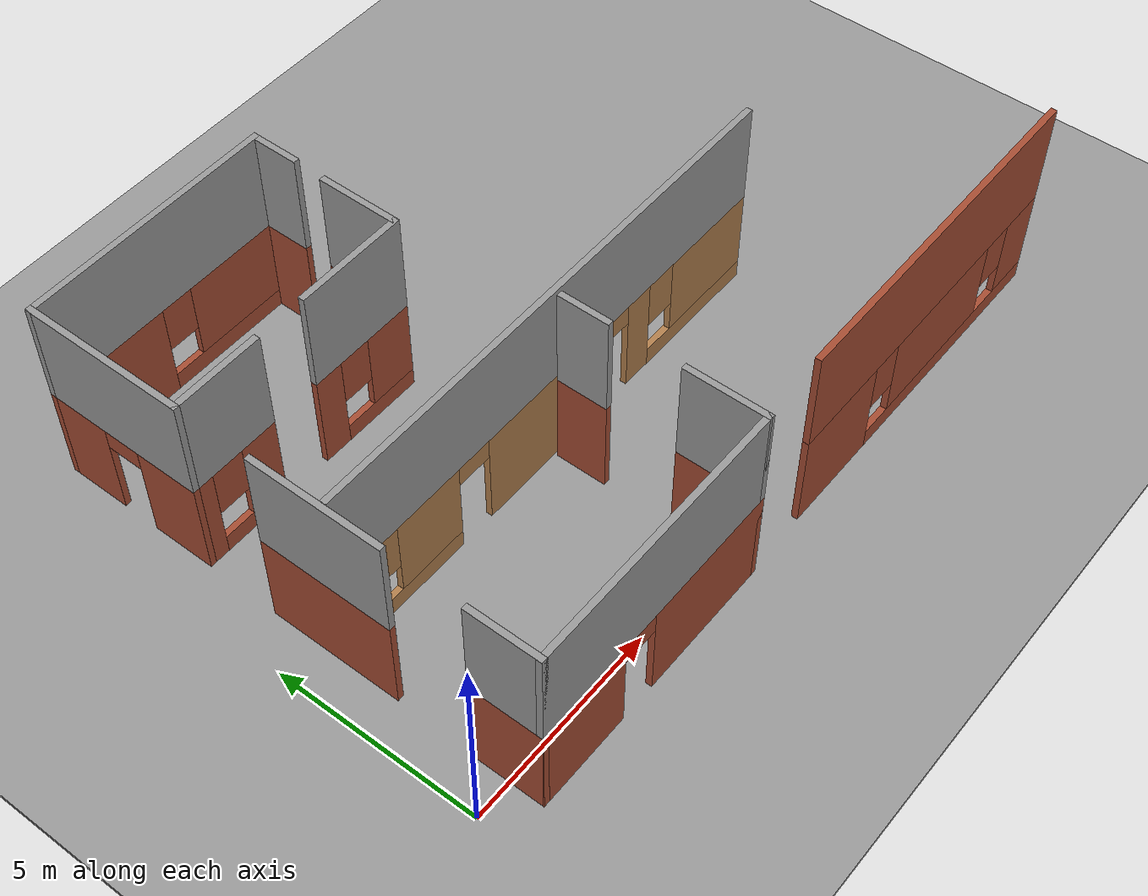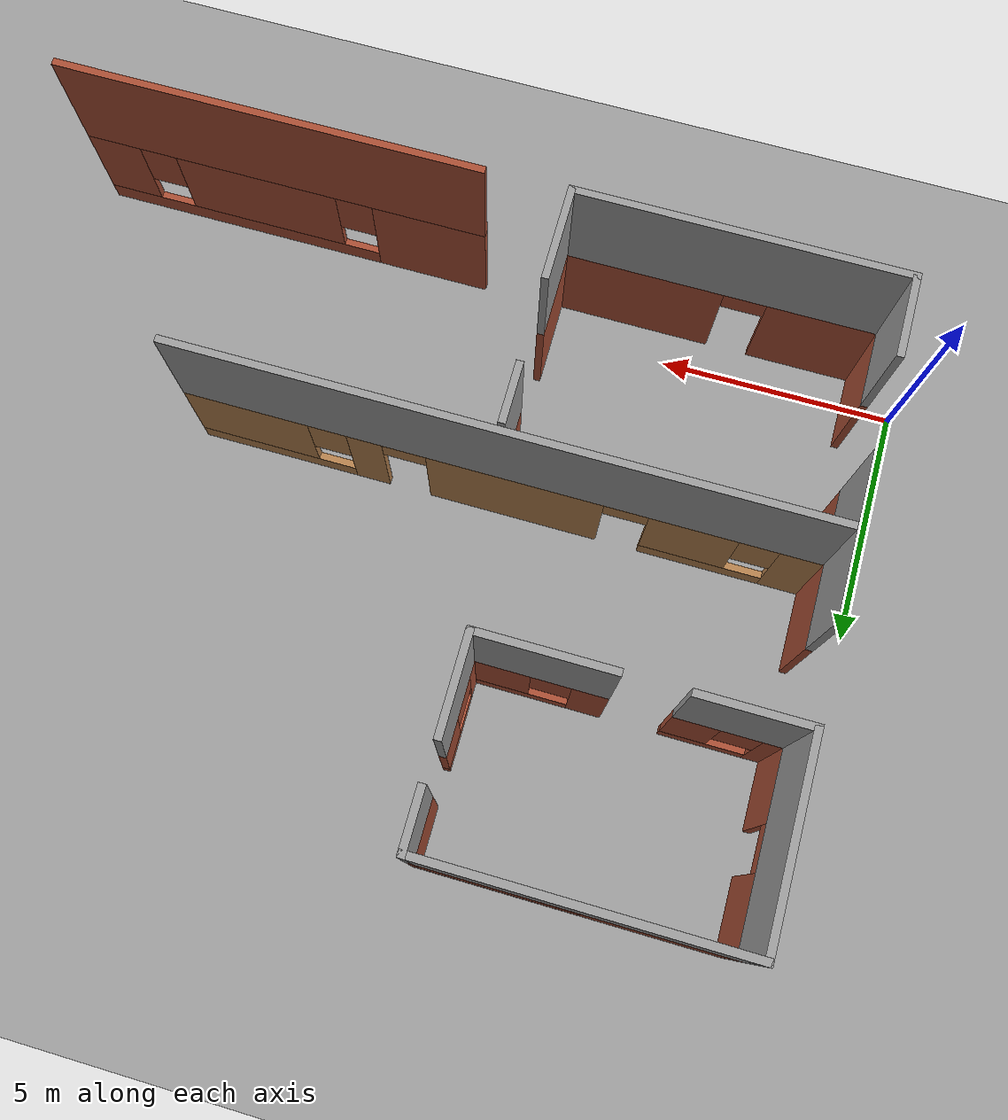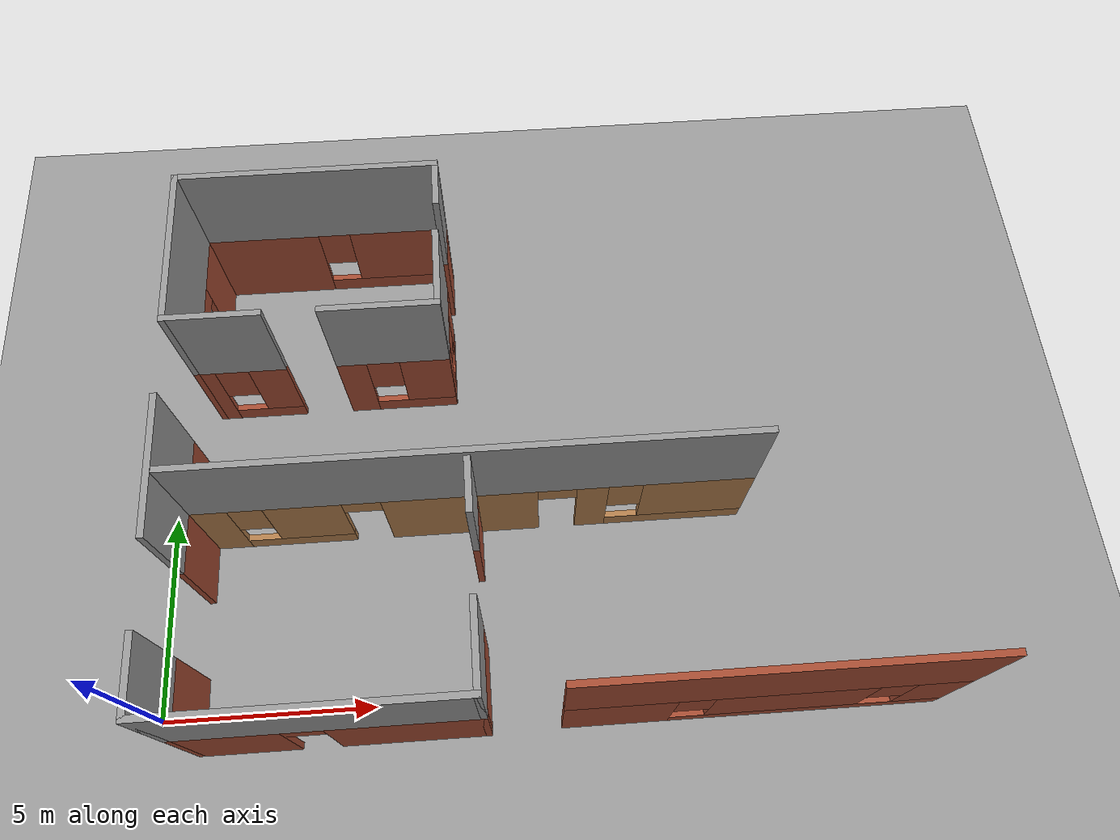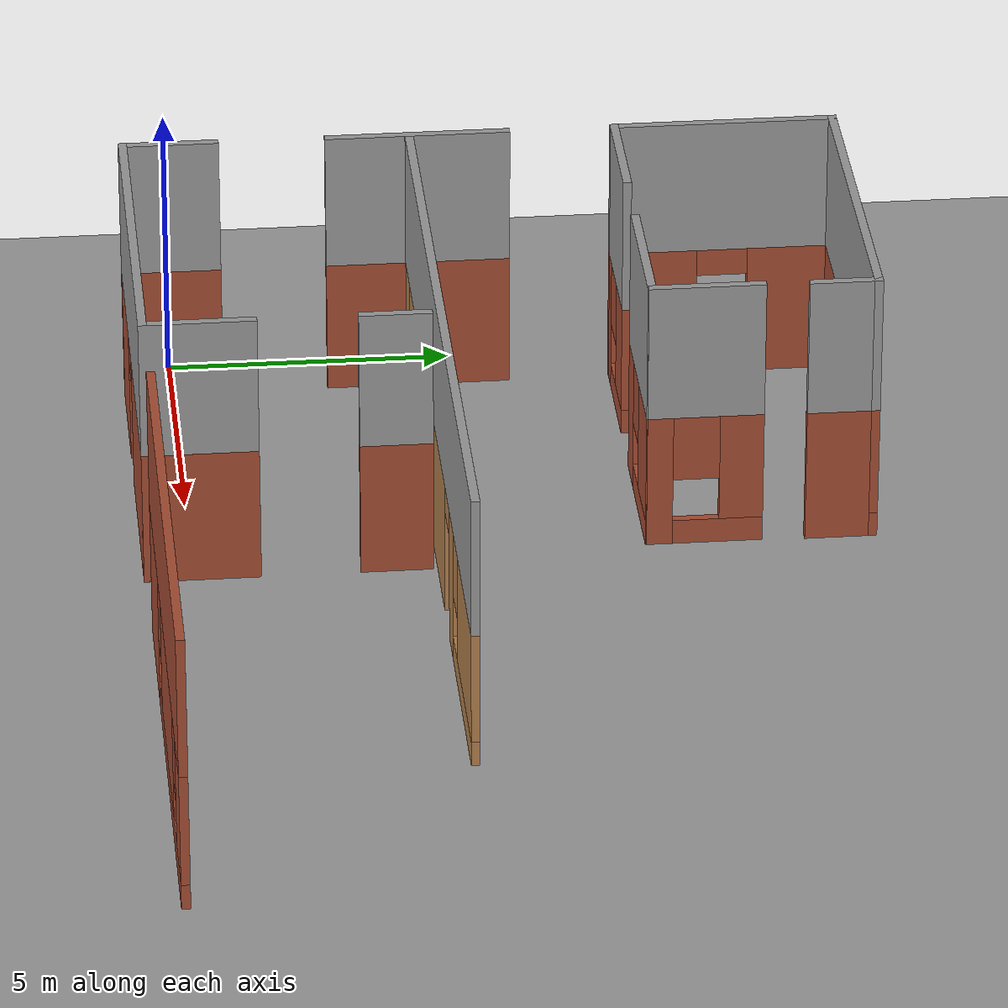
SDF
<sdf version="1.7">
 <world name="default">
  <model name="ground_plane">
   <static>1</static>
   <link name="link">
    <collision name="collision">
     <geometry><plane><normal>0 0 1</normal><size>100 100</size></plane></geometry>
     <surface><friction><ode><mu>100</mu><mu2>50</mu2></ode></friction></surface>
    </collision>
    <visual name="visual">
     <cast_shadows>0</cast_shadows>
     <geometry><plane><normal>0 0 1</normal><size>100 100</size></plane></geometry>
     <material>
      <script><uri>file://media/materials/scripts/gazebo.material</uri><name>Gazebo/Grey</name></script>
     </material>
    </visual>
   </link>
  </model>
  <model name="new_world">
   <pose>-5.74109 -0.556732 0 0 -0 0</pose>
   <link name="Wall_15">
    <pose>9.82012 12.272 0 0 -0 0</pose>
    <visual name="Wall_15_Visual_0">
     <pose>-1.65398 0 1.25 0 -0 0</pose>
     <geometry><box><size>2.94205 0.15 2.5</size></box></geometry>
     <material>
      <script><uri>file://media/materials/scripts/gazebo.material</uri><name>Gazebo/Bricks</name></script>
      <ambient>1 1 1 1</ambient>
     </material>
     <meta><layer>0</layer></meta>
    </visual>
    <collision name="Wall_15_Collision_0">
     <geometry><box><size>2.94205 0.15 2.5</size></box></geometry>
     <pose>-1.65398 0 1.25 0 -0 0</pose>
    </collision>
    <visual name="Wall_15_Visual_1">
     <pose>1.47102 0 0.25 0 -0 0</pose>
     <geometry><box><size>3.30795 0.15 0.5</size></box></geometry>
     <material>
      <script><uri>file://media/materials/scripts/gazebo.material</uri><name>Gazebo/Bricks</name></script>
      <ambient>1 1 1 1</ambient>
     </material>
     <meta><layer>0</layer></meta>
    </visual>
    <collision name="Wall_15_Collision_1">
     <geometry><box><size>3.30795 0.15 0.5</size></box></geometry>
     <pose>1.47102 0 0.25 0 -0 0</pose>
    </collision>
    <visual name="Wall_15_Visual_2">
     <pose>1.87102 0 1.5 0 -0 0</pose>
     <geometry><box><size>2.50795 0.15 2</size></box></geometry>
     <material>
      <script><uri>file://media/materials/scripts/gazebo.material</uri><name>Gazebo/Bricks</name></script>
      <ambient>1 1 1 1</ambient>
     </material>
     <meta><layer>0</layer></meta>
    </visual>
    <collision name="Wall_15_Collision_2">
     <geometry><box><size>2.50795 0.15 2</size></box></geometry>
     <pose>1.87102 0 1.5 0 -0 0</pose>
    </collision>
    <visual name="Wall_15_Visual_3">
     <pose>0.217048 0 1.9 0 -0 0</pose>
     <geometry><box><size>0.8 0.15 1.2</size></box></geometry>
     <material>
      <script><uri>file://media/materials/scripts/gazebo.material</uri><name>Gazebo/Bricks</name></script>
      <ambient>1 1 1 1</ambient>
     </material>
     <meta><layer>0</layer></meta>
    </visual>
    <collision name="Wall_15_Collision_3">
     <geometry><box><size>0.8 0.15 1.2</size></box></geometry>
     <pose>0.217048 0 1.9 0 -0 0</pose>
    </collision>
   </link>
   <link name="Wall_166">
    <collision name="Wall_166_Collision">
     <geometry><box><size>6.25 0.15 2.5</size></box></geometry>
     <pose>0 0 1.25 0 -0 0</pose>
    </collision>
    <visual name="Wall_166_Visual">
     <pose>0 0 1.25 0 -0 0</pose>
     <geometry><box><size>6.25 0.15 2.5</size></box></geometry>
     <material>
      <script><uri>file://media/materials/scripts/gazebo.material</uri><name>Gazebo/Grey</name></script>
      <ambient>1 1 1 1</ambient>
     </material>
     <meta><layer>1</layer></meta>
    </visual>
    <pose>9.82012 12.272 2.5 0 -0 0</pose>
   </link>
   <link name="Wall_171">
    <collision name="Wall_171_Collision">
     <geometry><box><size>4 0.15 2.5</size></box></geometry>
     <pose>0 0 1.25 0 -0 0</pose>
    </collision>
    <visual name="Wall_171_Visual">
     <pose>0 0 1.25 0 -0 0</pose>
     <geometry><box><size>4 0.15 2.5</size></box></geometry>
     <material>
      <script><uri>file://media/materials/scripts/gazebo.material</uri><name>Gazebo/Grey</name></script>
      <ambient>1 1 1 1</ambient>
     </material>
     <meta><layer>1</layer></meta>
    </visual>
    <pose>6.77012 10.347 2.5 0 -0 -1.5708</pose>
   </link>
   <link name="Wall_172">
    <collision name="Wall_172_Collision">
     <geometry><box><size>3.25 0.15 2.5</size></box></geometry>
     <pose>0 0 1.25 0 -0 0</pose>
    </collision>
    <visual name="Wall_172_Visual">
     <pose>0 0 1.25 0 -0 0</pose>
     <geometry><box><size>3.25 0.15 2.5</size></box></geometry>
     <material>
      <script><uri>file://media/materials/scripts/gazebo.material</uri><name>Gazebo/Grey</name></script>
      <ambient>1 1 1 1</ambient>
     </material>
     <meta><layer>1</layer></meta>
    </visual>
    <pose>6.75883 4.95214 2.5 0 -0 -1.5708</pose>
   </link>
   <link name="Wall_173">
    <collision name="Wall_173_Collision">
     <geometry><box><size>1.75 0.15 2.5</size></box></geometry>
     <pose>0 0 1.25 0 -0 0</pose>
    </collision>
    <visual name="Wall_173_Visual">
     <pose>0 0 1.25 0 -0 0</pose>
     <geometry><box><size>1.75 0.15 2.5</size></box></geometry>
     <material>
      <script><uri>file://media/materials/scripts/gazebo.material</uri><name>Gazebo/Grey</name></script>
      <ambient>1 1 1 1</ambient>
     </material>
     <meta><layer>1</layer></meta>
    </visual>
    <pose>6.72823 0.593575 2.5 0 -0 -1.5708</pose>
   </link>
   <link name="Wall_176">
    <collision name="Wall_176_Collision">
     <geometry><box><size>6.75 0.15 2.5</size></box></geometry>
     <pose>0 0 1.25 0 -0 0</pose>
    </collision>
    <visual name="Wall_176_Visual">
     <pose>0 0 1.25 0 -0 0</pose>
     <geometry><box><size>6.75 0.15 2.5</size></box></geometry>
     <material>
      <script><uri>file://media/materials/scripts/gazebo.material</uri><name>Gazebo/Grey</name></script>
      <ambient>1 1 1 1</ambient>
     </material>
     <meta><layer>1</layer></meta>
    </visual>
    <pose>10.0282 -0.206425 2.5 0 -0 0</pose>
   </link>
   <link name="Wall_177">
    <collision name="Wall_177_Collision">
     <geometry><box><size>8.75 0.15 2.5</size></box></geometry>
     <pose>0 0 1.25 0 -0 0</pose>
    </collision>
    <visual name="Wall_177_Visual">
     <pose>0 0 1.25 0 -0 0</pose>
     <geometry><box><size>8.75 0.15 2.5</size></box></geometry>
     <material>
      <script><uri>file://media/materials/scripts/gazebo.material</uri><name>Gazebo/Bricks</name></script>
      <ambient>1 1 1 1</ambient>
     </material>
     <meta><layer>1</layer></meta>
    </visual>
    <pose>19.3774 -0.149946 2.5 0 -0 0</pose>
   </link>
   <link name="Wall_178">
    <collision name="Wall_178_Collision">
     <geometry><box><size>2.25 0.15 2.5</size></box></geometry>
     <pose>0 0 1.25 0 -0 0</pose>
    </collision>
    <visual name="Wall_178_Visual">
     <pose>0 0 1.25 0 -0 0</pose>
     <geometry><box><size>2.25 0.15 2.5</size></box></geometry>
     <material>
      <script><uri>file://media/materials/scripts/gazebo.material</uri><name>Gazebo/Grey</name></script>
      <ambient>1 1 1 1</ambient>
     </material>
     <meta><layer>1</layer></meta>
    </visual>
    <pose>7.82012 8.42205 2.5 0 -0 0</pose>
   </link>
   <link name="Wall_179">
    <collision name="Wall_179_Collision">
     <geometry><box><size>2 0.15 2.5</size></box></geometry>
     <pose>0 0 1.25 0 -0 0</pose>
    </collision>
    <visual name="Wall_179_Visual">
     <pose>0 0 1.25 0 -0 0</pose>
     <geometry><box><size>2 0.15 2.5</size></box></geometry>
     <material>
      <script><uri>file://media/materials/scripts/gazebo.material</uri><name>Gazebo/Grey</name></script>
      <ambient>1 1 1 1</ambient>
     </material>
     <meta><layer>1</layer></meta>
    </visual>
    <pose>12.8315 9.36573 2.5 0 -0 1.5708</pose>
   </link>
   <link name="Wall_180">
    <collision name="Wall_180_Collision">
     <geometry><box><size>1.25 0.15 2.5</size></box></geometry>
     <pose>0 0 1.25 0 -0 0</pose>
    </collision>
    <visual name="Wall_180_Visual">
     <pose>0 0 1.25 0 -0 0</pose>
     <geometry><box><size>1.25 0.15 2.5</size></box></geometry>
     <material>
      <script><uri>file://media/materials/scripts/gazebo.material</uri><name>Gazebo/Grey</name></script>
      <ambient>1 1 1 1</ambient>
     </material>
     <meta><layer>1</layer></meta>
    </visual>
    <pose>12.8701 11.722 2.5 0 -0 1.5708</pose>
   </link>
   <link name="Wall_181">
    <collision name="Wall_181_Collision">
     <geometry><box><size>2.75 0.15 2.5</size></box></geometry>
     <pose>0 0 1.25 0 -0 0</pose>
    </collision>
    <visual name="Wall_181_Visual">
     <pose>0 0 1.25 0 -0 0</pose>
     <geometry><box><size>2.75 0.15 2.5</size></box></geometry>
     <material>
      <script><uri>file://media/materials/scripts/gazebo.material</uri><name>Gazebo/Grey</name></script>
      <ambient>1 1 1 1</ambient>
     </material>
     <meta><layer>1</layer></meta>
    </visual>
    <pose>11.5201 8.42205 2.5 0 -0 0</pose>
   </link>
   <link name="Wall_182">
    <collision name="Wall_182_Collision">
     <geometry><box><size>13 0.15 2.5</size></box></geometry>
     <pose>0 0 1.25 0 -0 0</pose>
    </collision>
    <visual name="Wall_182_Visual">
     <pose>0 0 1.25 0 -0 0</pose>
     <geometry><box><size>13 0.15 2.5</size></box></geometry>
     <material>
      <script><uri>file://media/materials/scripts/gazebo.material</uri><name>Gazebo/Grey</name></script>
      <ambient>1 1 1 1</ambient>
     </material>
     <meta><layer>1</layer></meta>
    </visual>
    <pose>13.3384 4.80537 2.5 0 -0 0</pose>
   </link>
   <link name="Wall_185">
    <collision name="Wall_185_Collision">
     <geometry><box><size>2 0.15 2.5</size></box></geometry>
     <pose>0 0 1.25 0 -0 0</pose>
    </collision>
    <visual name="Wall_185_Visual">
     <pose>0 0 1.25 0 -0 0</pose>
     <geometry><box><size>2 0.15 2.5</size></box></geometry>
     <material>
      <script><uri>file://media/materials/scripts/gazebo.material</uri><name>Gazebo/Grey</name></script>
      <ambient>1 1 1 1</ambient>
     </material>
     <meta><layer>1</layer></meta>
    </visual>
    <pose>13.3282 0.718575 2.5 0 -0 1.5708</pose>
   </link>
   <link name="Wall_186">
    <collision name="Wall_186_Collision">
     <geometry><box><size>1.25 0.15 2.5</size></box></geometry>
     <pose>0 0 1.25 0 -0 0</pose>
    </collision>
    <visual name="Wall_186_Visual">
     <pose>0 0 1.25 0 -0 0</pose>
     <geometry><box><size>1.25 0.15 2.5</size></box></geometry>
     <material>
      <script><uri>file://media/materials/scripts/gazebo.material</uri><name>Gazebo/Grey</name></script>
      <ambient>1 1 1 1</ambient>
     </material>
     <meta><layer>1</layer></meta>
    </visual>
    <pose>13.3282 4.04357 2.5 0 -0 1.5708</pose>
   </link>
   <link name="Wall_28">
    <pose>6.77012 10.347 0 0 -0 -1.5708</pose>
    <visual name="Wall_28_Visual_0">
     <pose>-1.22892 0 1.25 0 -0 0</pose>
     <geometry><box><size>1.54216 0.15 2.5</size></box></geometry>
     <material>
      <script><uri>file://media/materials/scripts/gazebo.material</uri><name>Gazebo/Bricks</name></script>
      <ambient>1 1 1 1</ambient>
     </material>
     <meta><layer>0</layer></meta>
    </visual>
    <collision name="Wall_28_Collision_0">
     <geometry><box><size>1.54216 0.15 2.5</size></box></geometry>
     <pose>-1.22892 0 1.25 0 -0 0</pose>
    </collision>
    <visual name="Wall_28_Visual_1">
     <pose>1.22108 0 1.25 0 -0 0</pose>
     <geometry><box><size>1.55784 0.15 2.5</size></box></geometry>
     <material>
      <script><uri>file://media/materials/scripts/gazebo.material</uri><name>Gazebo/Bricks</name></script>
      <ambient>1 1 1 1</ambient>
     </material>
     <meta><layer>0</layer></meta>
    </visual>
    <collision name="Wall_28_Collision_1">
     <geometry><box><size>1.55784 0.15 2.5</size></box></geometry>
     <pose>1.22108 0 1.25 0 -0 0</pose>
    </collision>
    <visual name="Wall_28_Visual_2">
     <pose>-0.007843 0 2.25 0 -0 0</pose>
     <geometry><box><size>0.9 0.15 0.5</size></box></geometry>
     <material>
      <script><uri>file://media/materials/scripts/gazebo.material</uri><name>Gazebo/Bricks</name></script>
      <ambient>1 1 1 1</ambient>
     </material>
     <meta><layer>0</layer></meta>
    </visual>
    <collision name="Wall_28_Collision_2">
     <geometry><box><size>0.9 0.15 0.5</size></box></geometry>
     <pose>-0.007843 0 2.25 0 -0 0</pose>
    </collision>
   </link>
   <link name="Wall_30">
    <collision name="Wall_30_Collision">
     <geometry><box><size>3.25 0.15 2.5</size></box></geometry>
     <pose>0 0 1.25 0 -0 0</pose>
    </collision>
    <visual name="Wall_30_Visual">
     <pose>0 0 1.25 0 -0 0</pose>
     <geometry><box><size>3.25 0.15 2.5</size></box></geometry>
     <material>
      <script><uri>file://media/materials/scripts/gazebo.material</uri><name>Gazebo/Bricks</name></script>
      <ambient>1 1 1 1</ambient>
     </material>
     <meta><layer>0</layer></meta>
    </visual>
    <pose>6.75883 4.95214 0 0 -0 -1.5708</pose>
   </link>
   <link name="Wall_32">
    <collision name="Wall_32_Collision">
     <geometry><box><size>1.75 0.15 2.5</size></box></geometry>
     <pose>0 0 1.25 0 -0 0</pose>
    </collision>
    <visual name="Wall_32_Visual">
     <pose>0 0 1.25 0 -0 0</pose>
     <geometry><box><size>1.75 0.15 2.5</size></box></geometry>
     <material>
      <script><uri>file://media/materials/scripts/gazebo.material</uri><name>Gazebo/Bricks</name></script>
      <ambient>1 1 1 1</ambient>
     </material>
     <meta><layer>0</layer></meta>
    </visual>
    <pose>6.72841 0.593697 0 0 -0 -1.57058</pose>
   </link>
   <link name="Wall_43">
    <pose>10.0286 -0.206181 0 0 -0 0</pose>
    <visual name="Wall_43_Visual_0">
     <pose>-2.17501 0 1.25 0 -0 0</pose>
     <geometry><box><size>2.39999 0.15 2.5</size></box></geometry>
     <material>
      <script><uri>file://media/materials/scripts/gazebo.material</uri><name>Gazebo/Bricks</name></script>
      <ambient>1 1 1 1</ambient>
     </material>
     <meta><layer>0</layer></meta>
    </visual>
    <collision name="Wall_43_Collision_0">
     <geometry><box><size>2.39999 0.15 2.5</size></box></geometry>
     <pose>-2.17501 0 1.25 0 -0 0</pose>
    </collision>
    <visual name="Wall_43_Visual_1">
     <pose>1.65 0 1.25 0 -0 0</pose>
     <geometry><box><size>3.45001 0.15 2.5</size></box></geometry>
     <material>
      <script><uri>file://media/materials/scripts/gazebo.material</uri><name>Gazebo/Bricks</name></script>
      <ambient>1 1 1 1</ambient>
     </material>
     <meta><layer>0</layer></meta>
    </visual>
    <collision name="Wall_43_Collision_1">
     <geometry><box><size>3.45001 0.15 2.5</size></box></geometry>
     <pose>1.65 0 1.25 0 -0 0</pose>
    </collision>
    <visual name="Wall_43_Visual_2">
     <pose>-0.525009 0 2.25 0 -0 0</pose>
     <geometry><box><size>0.9 0.15 0.5</size></box></geometry>
     <material>
      <script><uri>file://media/materials/scripts/gazebo.material</uri><name>Gazebo/Bricks</name></script>
      <ambient>1 1 1 1</ambient>
     </material>
     <meta><layer>0</layer></meta>
    </visual>
    <collision name="Wall_43_Collision_2">
     <geometry><box><size>0.9 0.15 0.5</size></box></geometry>
     <pose>-0.525009 0 2.25 0 -0 0</pose>
    </collision>
   </link>
   <link name="Wall_47">
    <pose>19.3776 -0.150181 0 0 -0 0</pose>
    <visual name="Wall_47_Visual_0">
     <pose>-3.14544 0 1.25 0 -0 0</pose>
     <geometry><box><size>2.45912 0.15 2.5</size></box></geometry>
     <material>
      <script><uri>file://media/materials/scripts/gazebo.material</uri><name>Gazebo/Bricks</name></script>
      <ambient>1 1 1 1</ambient>
     </material>
     <meta><layer>0</layer></meta>
    </visual>
    <collision name="Wall_47_Collision_0">
     <geometry><box><size>2.45912 0.15 2.5</size></box></geometry>
     <pose>-3.14544 0 1.25 0 -0 0</pose>
    </collision>
    <visual name="Wall_47_Visual_1">
     <pose>1.22956 0 0.25 0 -0 0</pose>
     <geometry><box><size>6.29087 0.15 0.5</size></box></geometry>
     <material>
      <script><uri>file://media/materials/scripts/gazebo.material</uri><name>Gazebo/Bricks</name></script>
      <ambient>1 1 1 1</ambient>
     </material>
     <meta><layer>0</layer></meta>
    </visual>
    <collision name="Wall_47_Collision_1">
     <geometry><box><size>6.29087 0.15 0.5</size></box></geometry>
     <pose>1.22956 0 0.25 0 -0 0</pose>
    </collision>
    <visual name="Wall_47_Visual_2">
     <pose>0.646334 0 1.5 0 -0 0</pose>
     <geometry><box><size>3.52442 0.15 2</size></box></geometry>
     <material>
      <script><uri>file://media/materials/scripts/gazebo.material</uri><name>Gazebo/Bricks</name></script>
      <ambient>1 1 1 1</ambient>
     </material>
     <meta><layer>0</layer></meta>
    </visual>
    <collision name="Wall_47_Collision_2">
     <geometry><box><size>3.52442 0.15 2</size></box></geometry>
     <pose>0.646334 0 1.5 0 -0 0</pose>
    </collision>
    <visual name="Wall_47_Visual_3">
     <pose>3.79177 0 1.5 0 -0 0</pose>
     <geometry><box><size>1.16646 0.15 2</size></box></geometry>
     <material>
      <script><uri>file://media/materials/scripts/gazebo.material</uri><name>Gazebo/Bricks</name></script>
      <ambient>1 1 1 1</ambient>
     </material>
     <meta><layer>0</layer></meta>
    </visual>
    <collision name="Wall_47_Collision_3">
     <geometry><box><size>1.16646 0.15 2</size></box></geometry>
     <pose>3.79177 0 1.5 0 -0 0</pose>
    </collision>
    <visual name="Wall_47_Visual_4">
     <pose>-1.51588 0 1.9 0 -0 0</pose>
     <geometry><box><size>0.8 0.15 1.2</size></box></geometry>
     <material>
      <script><uri>file://media/materials/scripts/gazebo.material</uri><name>Gazebo/Bricks</name></script>
      <ambient>1 1 1 1</ambient>
     </material>
     <meta><layer>0</layer></meta>
    </visual>
    <collision name="Wall_47_Collision_4">
     <geometry><box><size>0.8 0.15 1.2</size></box></geometry>
     <pose>-1.51588 0 1.9 0 -0 0</pose>
    </collision>
    <visual name="Wall_47_Visual_5">
     <pose>2.80854 0 1.9 0 -0 0</pose>
     <geometry><box><size>0.8 0.15 1.2</size></box></geometry>
     <material>
      <script><uri>file://media/materials/scripts/gazebo.material</uri><name>Gazebo/Bricks</name></script>
      <ambient>1 1 1 1</ambient>
     </material>
     <meta><layer>0</layer></meta>
    </visual>
    <collision name="Wall_47_Collision_5">
     <geometry><box><size>0.8 0.15 1.2</size></box></geometry>
     <pose>2.80854 0 1.9 0 -0 0</pose>
    </collision>
   </link>
   <link name="Wall_49">
    <pose>7.82012 8.42205 0 0 -0 0</pose>
    <visual name="Wall_49_Visual_0">
     <pose>-0.867644 0 1.25 0 -0 0</pose>
     <geometry><box><size>0.514713 0.15 2.5</size></box></geometry>
     <material>
      <script><uri>file://media/materials/scripts/gazebo.material</uri><name>Gazebo/Bricks</name></script>
      <ambient>1 1 1 1</ambient>
     </material>
     <meta><layer>0</layer></meta>
    </visual>
    <collision name="Wall_49_Collision_0">
     <geometry><box><size>0.514713 0.15 2.5</size></box></geometry>
     <pose>-0.867644 0 1.25 0 -0 0</pose>
    </collision>
    <visual name="Wall_49_Visual_1">
     <pose>0.257356 0 0.25 0 -0 0</pose>
     <geometry><box><size>1.73529 0.15 0.5</size></box></geometry>
     <material>
      <script><uri>file://media/materials/scripts/gazebo.material</uri><name>Gazebo/Bricks</name></script>
      <ambient>1 1 1 1</ambient>
     </material>
     <meta><layer>0</layer></meta>
    </visual>
    <collision name="Wall_49_Collision_1">
     <geometry><box><size>1.73529 0.15 0.5</size></box></geometry>
     <pose>0.257356 0 0.25 0 -0 0</pose>
    </collision>
    <visual name="Wall_49_Visual_2">
     <pose>0.657356 0 1.5 0 -0 0</pose>
     <geometry><box><size>0.935287 0.15 2</size></box></geometry>
     <material>
      <script><uri>file://media/materials/scripts/gazebo.material</uri><name>Gazebo/Bricks</name></script>
      <ambient>1 1 1 1</ambient>
     </material>
     <meta><layer>0</layer></meta>
    </visual>
    <collision name="Wall_49_Collision_2">
     <geometry><box><size>0.935287 0.15 2</size></box></geometry>
     <pose>0.657356 0 1.5 0 -0 0</pose>
    </collision>
    <visual name="Wall_49_Visual_3">
     <pose>-0.210287 0 1.9 0 -0 0</pose>
     <geometry><box><size>0.8 0.15 1.2</size></box></geometry>
     <material>
      <script><uri>file://media/materials/scripts/gazebo.material</uri><name>Gazebo/Bricks</name></script>
      <ambient>1 1 1 1</ambient>
     </material>
     <meta><layer>0</layer></meta>
    </visual>
    <collision name="Wall_49_Collision_3">
     <geometry><box><size>0.8 0.15 1.2</size></box></geometry>
     <pose>-0.210287 0 1.9 0 -0 0</pose>
    </collision>
   </link>
   <link name="Wall_53">
    <pose>12.8315 9.36573 0 0 -0 1.5708</pose>
    <visual name="Wall_53_Visual_0">
     <pose>-0.776787 0 1.25 0 -0 0</pose>
     <geometry><box><size>0.446426 0.15 2.5</size></box></geometry>
     <material>
      <script><uri>file://media/materials/scripts/gazebo.material</uri><name>Gazebo/Bricks</name></script>
      <ambient>1 1 1 1</ambient>
     </material>
     <meta><layer>0</layer></meta>
    </visual>
    <collision name="Wall_53_Collision_0">
     <geometry><box><size>0.446426 0.15 2.5</size></box></geometry>
     <pose>-0.776787 0 1.25 0 -0 0</pose>
    </collision>
    <visual name="Wall_53_Visual_1">
     <pose>0.223213 0 0.25 0 -0 0</pose>
     <geometry><box><size>1.55357 0.15 0.5</size></box></geometry>
     <material>
      <script><uri>file://media/materials/scripts/gazebo.material</uri><name>Gazebo/Bricks</name></script>
      <ambient>1 1 1 1</ambient>
     </material>
     <meta><layer>0</layer></meta>
    </visual>
    <collision name="Wall_53_Collision_1">
     <geometry><box><size>1.55357 0.15 0.5</size></box></geometry>
     <pose>0.223213 0 0.25 0 -0 0</pose>
    </collision>
    <visual name="Wall_53_Visual_2">
     <pose>0.623213 0 1.5 0 -0 0</pose>
     <geometry><box><size>0.753574 0.15 2</size></box></geometry>
     <material>
      <script><uri>file://media/materials/scripts/gazebo.material</uri><name>Gazebo/Bricks</name></script>
      <ambient>1 1 1 1</ambient>
     </material>
     <meta><layer>0</layer></meta>
    </visual>
    <collision name="Wall_53_Collision_2">
     <geometry><box><size>0.753574 0.15 2</size></box></geometry>
     <pose>0.623213 0 1.5 0 -0 0</pose>
    </collision>
    <visual name="Wall_53_Visual_3">
     <pose>-0.153574 0 1.9 0 -0 0</pose>
     <geometry><box><size>0.8 0.15 1.2</size></box></geometry>
     <material>
      <script><uri>file://media/materials/scripts/gazebo.material</uri><name>Gazebo/Bricks</name></script>
      <ambient>1 1 1 1</ambient>
     </material>
     <meta><layer>0</layer></meta>
    </visual>
    <collision name="Wall_53_Collision_3">
     <geometry><box><size>0.8 0.15 1.2</size></box></geometry>
     <pose>-0.153574 0 1.9 0 -0 0</pose>
    </collision>
   </link>
   <link name="Wall_55">
    <collision name="Wall_55_Collision">
     <geometry><box><size>1.25 0.15 2.5</size></box></geometry>
     <pose>0 0 1.25 0 -0 0</pose>
    </collision>
    <visual name="Wall_55_Visual">
     <pose>0 0 1.25 0 -0 0</pose>
     <geometry><box><size>1.25 0.15 2.5</size></box></geometry>
     <material>
      <script><uri>file://media/materials/scripts/gazebo.material</uri><name>Gazebo/Bricks</name></script>
      <ambient>1 1 1 1</ambient>
     </material>
     <meta><layer>0</layer></meta>
    </visual>
    <pose>12.8701 11.722 0 0 -0 1.5708</pose>
   </link>
   <link name="Wall_58">
    <pose>11.5201 8.42205 0 0 -0 0</pose>
    <visual name="Wall_58_Visual_0">
     <pose>-1.01335 0 1.25 0 -0 0</pose>
     <geometry><box><size>0.723304 0.15 2.5</size></box></geometry>
     <material>
      <script><uri>file://media/materials/scripts/gazebo.material</uri><name>Gazebo/Bricks</name></script>
      <ambient>1 1 1 1</ambient>
     </material>
     <meta><layer>0</layer></meta>
    </visual>
    <collision name="Wall_58_Collision_0">
     <geometry><box><size>0.723304 0.15 2.5</size></box></geometry>
     <pose>-1.01335 0 1.25 0 -0 0</pose>
    </collision>
    <visual name="Wall_58_Visual_1">
     <pose>0.361652 0 0.25 0 -0 0</pose>
     <geometry><box><size>2.0267 0.15 0.5</size></box></geometry>
     <material>
      <script><uri>file://media/materials/scripts/gazebo.material</uri><name>Gazebo/Bricks</name></script>
      <ambient>1 1 1 1</ambient>
     </material>
     <meta><layer>0</layer></meta>
    </visual>
    <collision name="Wall_58_Collision_1">
     <geometry><box><size>2.0267 0.15 0.5</size></box></geometry>
     <pose>0.361652 0 0.25 0 -0 0</pose>
    </collision>
    <visual name="Wall_58_Visual_2">
     <pose>0.761652 0 1.5 0 -0 0</pose>
     <geometry><box><size>1.2267 0.15 2</size></box></geometry>
     <material>
      <script><uri>file://media/materials/scripts/gazebo.material</uri><name>Gazebo/Bricks</name></script>
      <ambient>1 1 1 1</ambient>
     </material>
     <meta><layer>0</layer></meta>
    </visual>
    <collision name="Wall_58_Collision_2">
     <geometry><box><size>1.2267 0.15 2</size></box></geometry>
     <pose>0.761652 0 1.5 0 -0 0</pose>
    </collision>
    <visual name="Wall_58_Visual_3">
     <pose>-0.251696 0 1.9 0 -0 0</pose>
     <geometry><box><size>0.8 0.15 1.2</size></box></geometry>
     <material>
      <script><uri>file://media/materials/scripts/gazebo.material</uri><name>Gazebo/Bricks</name></script>
      <ambient>1 1 1 1</ambient>
     </material>
     <meta><layer>0</layer></meta>
    </visual>
    <collision name="Wall_58_Collision_3">
     <geometry><box><size>0.8 0.15 1.2</size></box></geometry>
     <pose>-0.251696 0 1.9 0 -0 0</pose>
    </collision>
   </link>
   <link name="Wall_60">
    <pose>13.3386 4.80582 0 0 -0 0</pose>
    <visual name="Wall_60_Visual_0">
     <pose>-6.08003 0 1.25 0 -0 0</pose>
     <geometry><box><size>0.839951 0.15 2.5</size></box></geometry>
     <material>
      <script><uri>file://media/materials/scripts/gazebo.material</uri><name>Gazebo/Wood</name></script>
      <ambient>1 1 1 1</ambient>
     </material>
     <meta><layer>0</layer></meta>
    </visual>
    <collision name="Wall_60_Collision_0">
     <geometry><box><size>0.839951 0.15 2.5</size></box></geometry>
     <pose>-6.08003 0 1.25 0 -0 0</pose>
    </collision>
    <visual name="Wall_60_Visual_1">
     <pose>-0.342281 0 1.25 0 -0 0</pose>
     <geometry><box><size>3.62555 0.15 2.5</size></box></geometry>
     <material>
      <script><uri>file://media/materials/scripts/gazebo.material</uri><name>Gazebo/Wood</name></script>
      <ambient>1 1 1 1</ambient>
     </material>
     <meta><layer>0</layer></meta>
    </visual>
    <collision name="Wall_60_Collision_1">
     <geometry><box><size>3.62555 0.15 2.5</size></box></geometry>
     <pose>-0.342281 0 1.25 0 -0 0</pose>
    </collision>
    <visual name="Wall_60_Visual_2">
     <pose>2.73998 0 1.25 0 -0 0</pose>
     <geometry><box><size>0.738972 0.15 2.5</size></box></geometry>
     <material>
      <script><uri>file://media/materials/scripts/gazebo.material</uri><name>Gazebo/Wood</name></script>
      <ambient>1 1 1 1</ambient>
     </material>
     <meta><layer>0</layer></meta>
    </visual>
    <collision name="Wall_60_Collision_2">
     <geometry><box><size>0.738972 0.15 2.5</size></box></geometry>
     <pose>2.73998 0 1.25 0 -0 0</pose>
    </collision>
    <visual name="Wall_60_Visual_3">
     <pose>-4.35755 0 0.25 0 -0 0</pose>
     <geometry><box><size>2.60499 0.15 0.5</size></box></geometry>
     <material>
      <script><uri>file://media/materials/scripts/gazebo.material</uri><name>Gazebo/Wood</name></script>
      <ambient>1 1 1 1</ambient>
     </material>
     <meta><layer>0</layer></meta>
    </visual>
    <collision name="Wall_60_Collision_3">
     <geometry><box><size>2.60499 0.15 0.5</size></box></geometry>
     <pose>-4.35755 0 0.25 0 -0 0</pose>
    </collision>
    <visual name="Wall_60_Visual_4">
     <pose>4.80473 0 0.25 0 -0 0</pose>
     <geometry><box><size>3.39053 0.15 0.5</size></box></geometry>
     <material>
      <script><uri>file://media/materials/scripts/gazebo.material</uri><name>Gazebo/Wood</name></script>
      <ambient>1 1 1 1</ambient>
     </material>
     <meta><layer>0</layer></meta>
    </visual>
    <collision name="Wall_60_Collision_4">
     <geometry><box><size>3.39053 0.15 0.5</size></box></geometry>
     <pose>4.80473 0 0.25 0 -0 0</pose>
    </collision>
    <visual name="Wall_60_Visual_5">
     <pose>-3.95755 0 1.5 0 -0 0</pose>
     <geometry><box><size>1.80499 0.15 2</size></box></geometry>
     <material>
      <script><uri>file://media/materials/scripts/gazebo.material</uri><name>Gazebo/Wood</name></script>
      <ambient>1 1 1 1</ambient>
     </material>
     <meta><layer>0</layer></meta>
    </visual>
    <collision name="Wall_60_Collision_5">
     <geometry><box><size>1.80499 0.15 2</size></box></geometry>
     <pose>-3.95755 0 1.5 0 -0 0</pose>
    </collision>
    <visual name="Wall_60_Visual_6">
     <pose>-3.95755 0 1.5 0 -0 0</pose>
     <geometry><box><size>1.80499 0.15 2</size></box></geometry>
     <material>
      <script><uri>file://media/materials/scripts/gazebo.material</uri><name>Gazebo/Wood</name></script>
      <ambient>1 1 1 1</ambient>
     </material>
     <meta><layer>0</layer></meta>
    </visual>
    <collision name="Wall_60_Collision_6">
     <geometry><box><size>1.80499 0.15 2</size></box></geometry>
     <pose>-3.95755 0 1.5 0 -0 0</pose>
    </collision>
    <visual name="Wall_60_Visual_7">
     <pose>5.20473 0 1.5 0 -0 0</pose>
     <geometry><box><size>2.59053 0.15 2</size></box></geometry>
     <material>
      <script><uri>file://media/materials/scripts/gazebo.material</uri><name>Gazebo/Wood</name></script>
      <ambient>1 1 1 1</ambient>
     </material>
     <meta><layer>0</layer></meta>
    </visual>
    <collision name="Wall_60_Collision_7">
     <geometry><box><size>2.59053 0.15 2</size></box></geometry>
     <pose>5.20473 0 1.5 0 -0 0</pose>
    </collision>
    <visual name="Wall_60_Visual_8">
     <pose>-5.26005 0 1.9 0 -0 0</pose>
     <geometry><box><size>0.8 0.15 1.2</size></box></geometry>
     <material>
      <script><uri>file://media/materials/scripts/gazebo.material</uri><name>Gazebo/Wood</name></script>
      <ambient>1 1 1 1</ambient>
     </material>
     <meta><layer>0</layer></meta>
    </visual>
    <collision name="Wall_60_Collision_8">
     <geometry><box><size>0.8 0.15 1.2</size></box></geometry>
     <pose>-5.26005 0 1.9 0 -0 0</pose>
    </collision>
    <visual name="Wall_60_Visual_9">
     <pose>3.50947 0 1.9 0 -0 0</pose>
     <geometry><box><size>0.8 0.15 1.2</size></box></geometry>
     <material>
      <script><uri>file://media/materials/scripts/gazebo.material</uri><name>Gazebo/Wood</name></script>
      <ambient>1 1 1 1</ambient>
     </material>
     <meta><layer>0</layer></meta>
    </visual>
    <collision name="Wall_60_Collision_9">
     <geometry><box><size>0.8 0.15 1.2</size></box></geometry>
     <pose>3.50947 0 1.9 0 -0 0</pose>
    </collision>
    <visual name="Wall_60_Visual_10">
     <pose>1.9205 0 2.25 0 -0 0</pose>
     <geometry><box><size>0.9 0.15 0.5</size></box></geometry>
     <material>
      <script><uri>file://media/materials/scripts/gazebo.material</uri><name>Gazebo/Wood</name></script>
      <ambient>1 1 1 1</ambient>
     </material>
     <meta><layer>0</layer></meta>
    </visual>
    <collision name="Wall_60_Collision_10">
     <geometry><box><size>0.9 0.15 0.5</size></box></geometry>
     <pose>1.9205 0 2.25 0 -0 0</pose>
    </collision>
    <visual name="Wall_60_Visual_11">
     <pose>-2.60506 0 2.25 0 -0 0</pose>
     <geometry><box><size>0.9 0.15 0.5</size></box></geometry>
     <material>
      <script><uri>file://media/materials/scripts/gazebo.material</uri><name>Gazebo/Wood</name></script>
      <ambient>1 1 1 1</ambient>
     </material>
     <meta><layer>0</layer></meta>
    </visual>
    <collision name="Wall_60_Collision_11">
     <geometry><box><size>0.9 0.15 0.5</size></box></geometry>
     <pose>-2.60506 0 2.25 0 -0 0</pose>
    </collision>
    <visual name="Wall_60_Visual_12">
     <pose>-2.60506 0 2.25 0 -0 0</pose>
     <geometry><box><size>0.9 0.15 0.5</size></box></geometry>
     <material>
      <script><uri>file://media/materials/scripts/gazebo.material</uri><name>Gazebo/Wood</name></script>
      <ambient>1 1 1 1</ambient>
     </material>
     <meta><layer>0</layer></meta>
    </visual>
    <collision name="Wall_60_Collision_12">
     <geometry><box><size>0.9 0.15 0.5</size></box></geometry>
     <pose>-2.60506 0 2.25 0 -0 0</pose>
    </collision>
   </link>
   <link name="Wall_66">
    <collision name="Wall_66_Collision">
     <geometry><box><size>2 0.15 2.5</size></box></geometry>
     <pose>0 0 1.25 0 -0 0</pose>
    </collision>
    <visual name="Wall_66_Visual">
     <pose>0 0 1.25 0 -0 0</pose>
     <geometry><box><size>2 0.15 2.5</size></box></geometry>
     <material>
      <script><uri>file://media/materials/scripts/gazebo.material</uri><name>Gazebo/Bricks</name></script>
      <ambient>1 1 1 1</ambient>
     </material>
     <meta><layer>0</layer></meta>
    </visual>
    <pose>13.3286 0.718819 0 0 -0 1.5708</pose>
   </link>
   <link name="Wall_68">
    <collision name="Wall_68_Collision">
     <geometry><box><size>1.25 0.15 2.5</size></box></geometry>
     <pose>0 0 1.25 0 -0 0</pose>
    </collision>
    <visual name="Wall_68_Visual">
     <pose>0 0 1.25 0 -0 0</pose>
     <geometry><box><size>1.25 0.15 2.5</size></box></geometry>
     <material>
      <script><uri>file://media/materials/scripts/gazebo.material</uri><name>Gazebo/Bricks</name></script>
      <ambient>1 1 1 1</ambient>
     </material>
     <meta><layer>0</layer></meta>
    </visual>
    <pose>13.3282 4.04357 0 0 -0 1.5708</pose>
   </link>
   <static>1</static>
  </model>
  <model name="ground_plane_0">
   <static>1</static>
   <link name="link">
    <collision name="collision">
     <geometry><plane><normal>0 0 1</normal><size>100 100</size></plane></geometry>
     <surface><friction><ode><mu>100</mu><mu2>50</mu2></ode></friction></surface>
    </collision>
    <visual name="visual">
     <cast_shadows>0</cast_shadows>
     <geometry><plane><normal>0 0 1</normal><size>100 100</size></plane></geometry>
     <material>
      <script><uri>file://media/materials/scripts/gazebo.material</uri><name>Gazebo/Grey</name></script>
     </material>
    </visual>
   </link>
   <pose>4.46962 1.05622 0 0 -0 0</pose>
  </model>
 </world>
</sdf>
